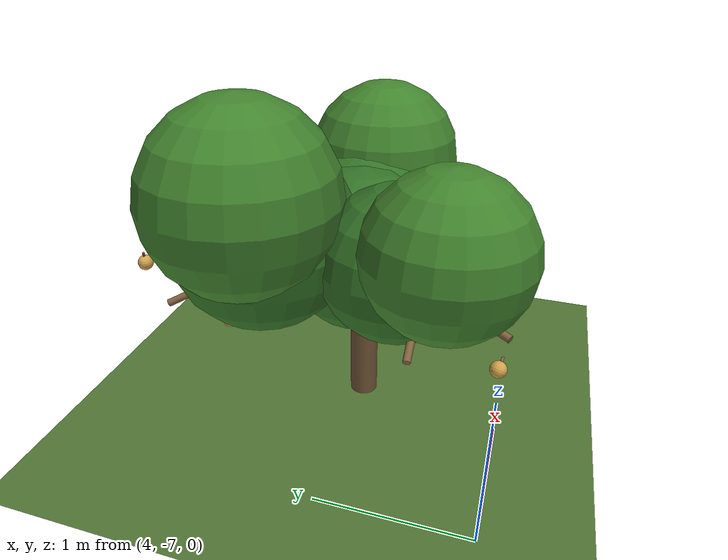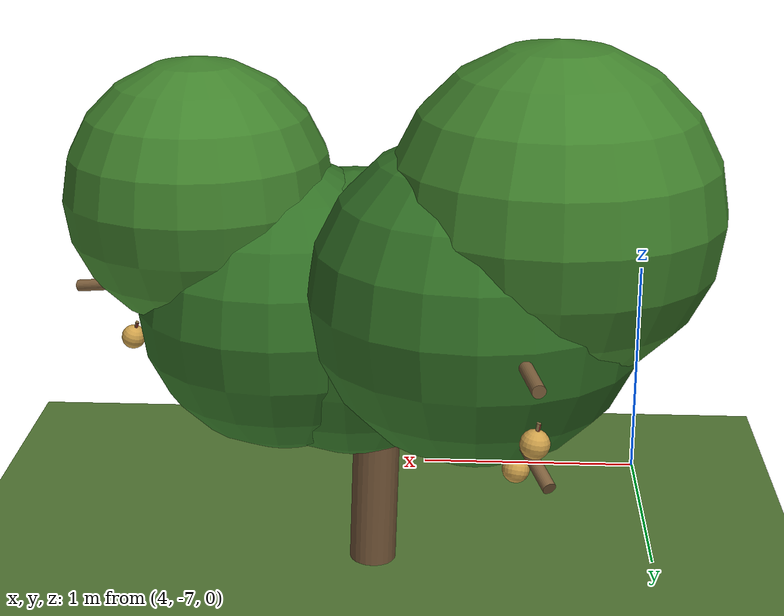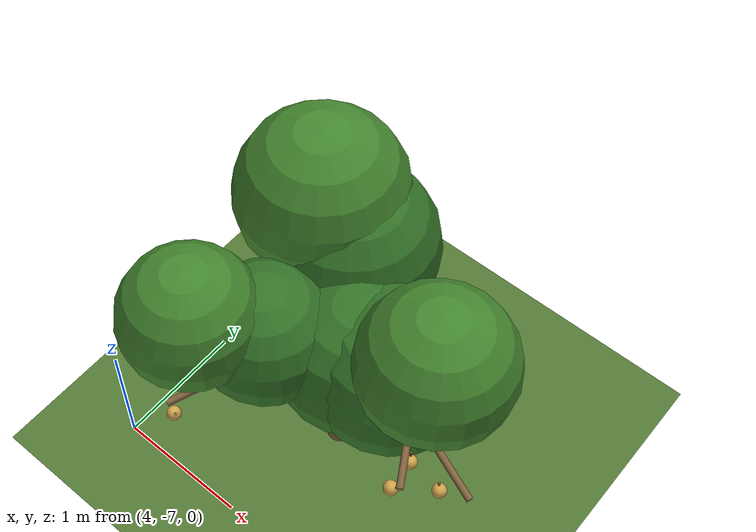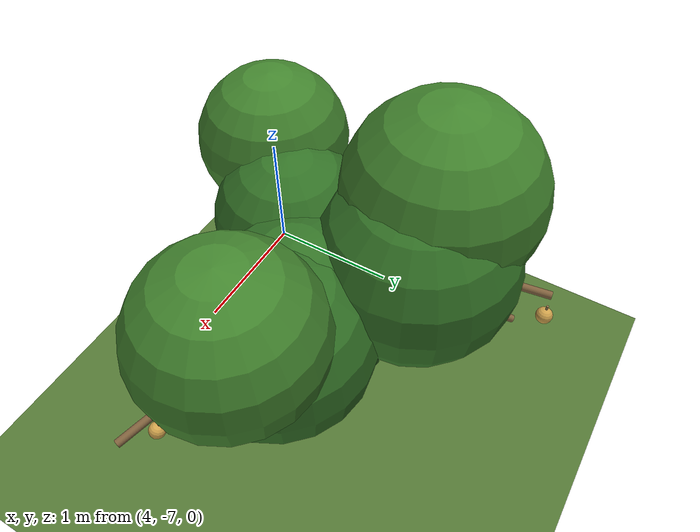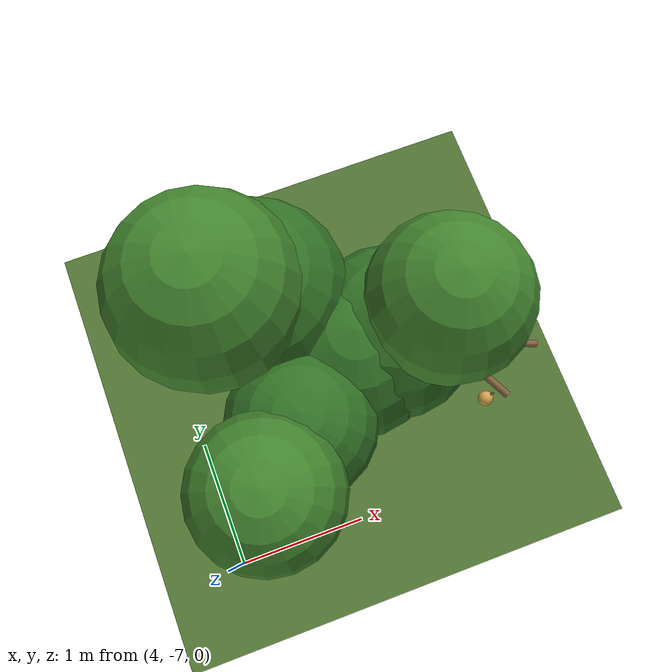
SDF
<sdf version="1.8">
 <world name="bagged_peach_orchard">
  <model name="ground">
   <static>true</static>
   <link name="link">
    <collision name="c">
     <geometry><plane><normal>0 0 1</normal><size>40.0 30.0</size></plane></geometry>
    </collision>
    <visual name="v">
     <geometry><plane><normal>0 0 1</normal><size>40.0 30.0</size></plane></geometry>
     <material>
      <ambient>0.1600 0.2300 0.1000 1</ambient>
      <diffuse>0.3200 0.4600 0.2000 1</diffuse>
      <specular>0.05 0.05 0.05 1</specular>
     </material>
    </visual>
   </link>
  </model>
  <model name="tree_r0_t4">
   <static>true</static>
   <link name="trunk">
    <visual name="trunk_v">
     <pose>5.1897 -5.9958 0.3299 -0.0126 -0.0313 0.0002</pose>
     <geometry><cylinder><radius>0.0979</radius><length>0.6602</length></cylinder></geometry>
     <material>
      <ambient>0.2300 0.1700 0.1100 1</ambient>
      <diffuse>0.4600 0.3400 0.2200 1</diffuse>
      <specular>0.05 0.05 0.05 1</specular>
     </material>
    </visual>
    <collision name="trunk_v_c">
     <pose>5.1897 -5.9958 0.3299 -0.0126 -0.0313 0.0002</pose>
     <geometry><cylinder><radius>0.0979</radius><length>0.6602</length></cylinder></geometry>
    </collision>
   </link>
   <link name="frame">
    <visual name="leader0_v">
     <pose>5.6168 -6.0353 1.0787 0.1037 0.8044 0.0441</pose>
     <geometry><cylinder><radius>0.0500</radius><length>1.2144</length></cylinder></geometry>
     <material>
      <ambient>0.2300 0.1700 0.1100 1</ambient>
      <diffuse>0.4600 0.3400 0.2200 1</diffuse>
      <specular>0.05 0.05 0.05 1</specular>
     </material>
    </visual>
    <collision name="leader0_v_c">
     <pose>5.6168 -6.0353 1.0787 0.1037 0.8044 0.0441</pose>
     <geometry><cylinder><radius>0.0500</radius><length>1.2144</length></cylinder></geometry>
    </collision>
    <visual name="leader1_v">
     <pose>4.8857 -5.5529 1.1305 -0.7504 -0.4281 0.1708</pose>
     <geometry><cylinder><radius>0.0500</radius><length>1.4147</length></cylinder></geometry>
     <material>
      <ambient>0.2300 0.1700 0.1100 1</ambient>
      <diffuse>0.4600 0.3400 0.2200 1</diffuse>
      <specular>0.05 0.05 0.05 1</specular>
     </material>
    </visual>
    <collision name="leader1_v_c">
     <pose>4.8857 -5.5529 1.1305 -0.7504 -0.4281 0.1708</pose>
     <geometry><cylinder><radius>0.0500</radius><length>1.4147</length></cylinder></geometry>
    </collision>
    <visual name="leader2_v">
     <pose>4.8682 -6.3956 1.0957 0.7473 -0.4823 -0.1923</pose>
     <geometry><cylinder><radius>0.0500</radius><length>1.3416</length></cylinder></geometry>
     <material>
      <ambient>0.2300 0.1700 0.1100 1</ambient>
      <diffuse>0.4600 0.3400 0.2200 1</diffuse>
      <specular>0.05 0.05 0.05 1</specular>
     </material>
    </visual>
    <collision name="leader2_v_c">
     <pose>4.8682 -6.3956 1.0957 0.7473 -0.4823 -0.1923</pose>
     <geometry><cylinder><radius>0.0500</radius><length>1.3416</length></cylinder></geometry>
    </collision>
    <visual name="branch0_v">
     <pose>6.1322 -6.1745 1.1694 2.0440 1.1990 1.6819</pose>
     <geometry><cylinder><radius>0.0250</radius><length>0.7618</length></cylinder></geometry>
     <material>
      <ambient>0.2500 0.1900 0.1200 1</ambient>
      <diffuse>0.5000 0.3800 0.2400 1</diffuse>
      <specular>0.05 0.05 0.05 1</specular>
     </material>
    </visual>
    <visual name="branch1_v">
     <pose>5.9835 -6.3112 1.2484 1.7369 0.5132 0.6013</pose>
     <geometry><cylinder><radius>0.0250</radius><length>0.5908</length></cylinder></geometry>
     <material>
      <ambient>0.2500 0.1900 0.1200 1</ambient>
      <diffuse>0.5000 0.3800 0.2400 1</diffuse>
      <specular>0.05 0.05 0.05 1</specular>
     </material>
    </visual>
    <visual name="branch2_v">
     <pose>4.6725 -5.1364 1.0568 -2.0271 -0.4012 0.6308</pose>
     <geometry><cylinder><radius>0.0250</radius><length>0.8056</length></cylinder></geometry>
     <material>
      <ambient>0.2500 0.1900 0.1200 1</ambient>
      <diffuse>0.5000 0.3800 0.2400 1</diffuse>
      <specular>0.05 0.05 0.05 1</specular>
     </material>
    </visual>
    <visual name="branch3_v">
     <pose>4.6465 -4.9623 1.3610 -1.6606 -0.2148 0.2348</pose>
     <geometry><cylinder><radius>0.0250</radius><length>0.7124</length></cylinder></geometry>
     <material>
      <ambient>0.2500 0.1900 0.1200 1</ambient>
      <diffuse>0.5000 0.3800 0.2400 1</diffuse>
      <specular>0.05 0.05 0.05 1</specular>
     </material>
    </visual>
    <visual name="branch4_v">
     <pose>4.6654 -6.7524 1.1228 1.8053 -0.4566 -0.5725</pose>
     <geometry><cylinder><radius>0.0250</radius><length>0.6220</length></cylinder></geometry>
     <material>
      <ambient>0.2500 0.1900 0.1200 1</ambient>
      <diffuse>0.5000 0.3800 0.2400 1</diffuse>
      <specular>0.05 0.05 0.05 1</specular>
     </material>
    </visual>
    <visual name="branch5_v">
     <pose>4.5889 -6.4591 1.0235 3.0866 -1.0577 -3.0475</pose>
     <geometry><cylinder><radius>0.0250</radius><length>0.5419</length></cylinder></geometry>
     <material>
      <ambient>0.2500 0.1900 0.1200 1</ambient>
      <diffuse>0.5000 0.3800 0.2400 1</diffuse>
      <specular>0.05 0.05 0.05 1</specular>
     </material>
    </visual>
    <visual name="twig0_v">
     <pose>4.5565 -6.9954 0.8984 0.2781 0.5794 0.0834</pose>
     <geometry><cylinder><radius>0.0080</radius><length>0.0260</length></cylinder></geometry>
     <material>
      <ambient>0.2750 0.2250 0.1400 1</ambient>
      <diffuse>0.5500 0.4500 0.2800 1</diffuse>
      <specular>0.05 0.05 0.05 1</specular>
     </material>
    </visual>
    <visual name="twig1_v">
     <pose>4.4773 -6.8641 1.3975 0.7170 0.0521 0.0195</pose>
     <geometry><cylinder><radius>0.0080</radius><length>0.0260</length></cylinder></geometry>
     <material>
      <ambient>0.2750 0.2250 0.1400 1</ambient>
      <diffuse>0.5500 0.4500 0.2800 1</diffuse>
      <specular>0.05 0.05 0.05 1</specular>
     </material>
    </visual>
    <visual name="twig2_v">
     <pose>6.0192 -6.0216 1.3260 0.4722 -0.0077 -0.0019</pose>
     <geometry><cylinder><radius>0.0080</radius><length>0.0260</length></cylinder></geometry>
     <material>
      <ambient>0.2750 0.2250 0.1400 1</ambient>
      <diffuse>0.5500 0.4500 0.2800 1</diffuse>
      <specular>0.05 0.05 0.05 1</specular>
     </material>
    </visual>
    <visual name="twig3_v">
     <pose>6.0782 -6.5117 1.0678 -0.1976 0.7285 -0.0756</pose>
     <geometry><cylinder><radius>0.0080</radius><length>0.0260</length></cylinder></geometry>
     <material>
      <ambient>0.2750 0.2250 0.1400 1</ambient>
      <diffuse>0.5500 0.4500 0.2800 1</diffuse>
      <specular>0.05 0.05 0.05 1</specular>
     </material>
    </visual>
    <visual name="twig4_v">
     <pose>4.5928 -5.1023 1.4522 -0.4404 0.4242 -0.0963</pose>
     <geometry><cylinder><radius>0.0080</radius><length>0.0260</length></cylinder></geometry>
     <material>
      <ambient>0.2750 0.2250 0.1400 1</ambient>
      <diffuse>0.5500 0.4500 0.2800 1</diffuse>
      <specular>0.05 0.05 0.05 1</specular>
     </material>
    </visual>
    <visual name="twig5_v">
     <pose>6.2374 -6.2644 0.9447 -0.2106 -0.2829 0.0301</pose>
     <geometry><cylinder><radius>0.0080</radius><length>0.0260</length></cylinder></geometry>
     <material>
      <ambient>0.2750 0.2250 0.1400 1</ambient>
      <diffuse>0.5500 0.4500 0.2800 1</diffuse>
      <specular>0.05 0.05 0.05 1</specular>
     </material>
    </visual>
    <visual name="twig6_v">
     <pose>4.6103 -5.2224 0.8455 0.3025 -0.1443 -0.0220</pose>
     <geometry><cylinder><radius>0.0080</radius><length>0.0260</length></cylinder></geometry>
     <material>
      <ambient>0.2750 0.2250 0.1400 1</ambient>
      <diffuse>0.5500 0.4500 0.2800 1</diffuse>
      <specular>0.05 0.05 0.05 1</specular>
     </material>
    </visual>
    <visual name="twig7_v">
     <pose>4.5690 -4.6170 1.2058 -0.0300 -0.1524 0.0023</pose>
     <geometry><cylinder><radius>0.0080</radius><length>0.0260</length></cylinder></geometry>
     <material>
      <ambient>0.2750 0.2250 0.1400 1</ambient>
      <diffuse>0.5500 0.4500 0.2800 1</diffuse>
      <specular>0.05 0.05 0.05 1</specular>
     </material>
    </visual>
    <visual name="twig8_v">
     <pose>4.6466 -4.8997 1.2403 0.1561 -0.2190 -0.0172</pose>
     <geometry><cylinder><radius>0.0080</radius><length>0.0260</length></cylinder></geometry>
     <material>
      <ambient>0.2750 0.2250 0.1400 1</ambient>
      <diffuse>0.5500 0.4500 0.2800 1</diffuse>
      <specular>0.05 0.05 0.05 1</specular>
     </material>
    </visual>
    <visual name="twig9_v">
     <pose>6.0085 -6.2827 1.0980 -0.3627 -0.1772 0.0326</pose>
     <geometry><cylinder><radius>0.0080</radius><length>0.0260</length></cylinder></geometry>
     <material>
      <ambient>0.2750 0.2250 0.1400 1</ambient>
      <diffuse>0.5500 0.4500 0.2800 1</diffuse>
      <specular>0.05 0.05 0.05 1</specular>
     </material>
    </visual>
   </link>
   <link name="canopy">
    <visual name="blob0_v">
     <pose>5.5485 -5.8967 1.1873 0 0 0</pose>
     <geometry><sphere><radius>0.5956</radius></sphere></geometry>
     <material>
      <ambient>0.1000 0.2250 0.0750 1</ambient>
      <diffuse>0.2000 0.4500 0.1500 1</diffuse>
      <specular>0.05 0.05 0.05 1</specular>
     </material>
    </visual>
    <collision name="blob0_v_c">
     <pose>5.5485 -5.8967 1.1873 0 0 0</pose>
     <geometry><sphere><radius>0.5480</radius></sphere></geometry>
    </collision>
    <visual name="blob1_v">
     <pose>5.8868 -5.9218 1.6357 0 0 0</pose>
     <geometry><sphere><radius>0.5447</radius></sphere></geometry>
     <material>
      <ambient>0.1300 0.2600 0.0900 1</ambient>
      <diffuse>0.2600 0.5200 0.1800 1</diffuse>
      <specular>0.05 0.05 0.05 1</specular>
     </material>
    </visual>
    <collision name="blob1_v_c">
     <pose>5.8868 -5.9218 1.6357 0 0 0</pose>
     <geometry><sphere><radius>0.5011</radius></sphere></geometry>
    </collision>
    <visual name="blob2_v">
     <pose>4.7738 -5.3988 1.3955 0 0 0</pose>
     <geometry><sphere><radius>0.6382</radius></sphere></geometry>
     <material>
      <ambient>0.1000 0.2250 0.0750 1</ambient>
      <diffuse>0.2000 0.4500 0.1500 1</diffuse>
      <specular>0.05 0.05 0.05 1</specular>
     </material>
    </visual>
    <collision name="blob2_v_c">
     <pose>4.7738 -5.3988 1.3955 0 0 0</pose>
     <geometry><sphere><radius>0.5871</radius></sphere></geometry>
    </collision>
    <visual name="blob3_v">
     <pose>4.4978 -5.3886 1.7313 0 0 0</pose>
     <geometry><sphere><radius>0.6272</radius></sphere></geometry>
     <material>
      <ambient>0.1300 0.2600 0.0900 1</ambient>
      <diffuse>0.2600 0.5200 0.1800 1</diffuse>
      <specular>0.05 0.05 0.05 1</specular>
     </material>
    </visual>
    <collision name="blob3_v_c">
     <pose>4.4978 -5.3886 1.7313 0 0 0</pose>
     <geometry><sphere><radius>0.5770</radius></sphere></geometry>
    </collision>
    <visual name="blob4_v">
     <pose>4.7736 -6.2914 1.3143 0 0 0</pose>
     <geometry><sphere><radius>0.5032</radius></sphere></geometry>
     <material>
      <ambient>0.1000 0.2250 0.0750 1</ambient>
      <diffuse>0.2000 0.4500 0.1500 1</diffuse>
      <specular>0.05 0.05 0.05 1</specular>
     </material>
    </visual>
    <collision name="blob4_v_c">
     <pose>4.7736 -6.2914 1.3143 0 0 0</pose>
     <geometry><sphere><radius>0.4630</radius></sphere></geometry>
    </collision>
    <visual name="blob5_v">
     <pose>4.4346 -6.6389 1.5784 0 0 0</pose>
     <geometry><sphere><radius>0.4988</radius></sphere></geometry>
     <material>
      <ambient>0.1300 0.2600 0.0900 1</ambient>
      <diffuse>0.2600 0.5200 0.1800 1</diffuse>
      <specular>0.05 0.05 0.05 1</specular>
     </material>
    </visual>
    <collision name="blob5_v_c">
     <pose>4.4346 -6.6389 1.5784 0 0 0</pose>
     <geometry><sphere><radius>0.4589</radius></sphere></geometry>
    </collision>
    <visual name="blob6_v">
     <pose>5.2724 -5.9327 1.1441 0 0 0</pose>
     <geometry><sphere><radius>0.5872</radius></sphere></geometry>
     <material>
      <ambient>0.1000 0.2250 0.0750 1</ambient>
      <diffuse>0.2000 0.4500 0.1500 1</diffuse>
      <specular>0.05 0.05 0.05 1</specular>
     </material>
    </visual>
    <collision name="blob6_v_c">
     <pose>5.2724 -5.9327 1.1441 0 0 0</pose>
     <geometry><sphere><radius>0.5402</radius></sphere></geometry>
    </collision>
   </link>
   <link name="bag_r0_t4_b00">
    <pose>4.5494 -6.9924 0.8879 0.2781 0.5794 0.0834</pose>
    <visual name="paper">
     <pose>0 0 -0.0520 0 0 0</pose>
     <geometry><sphere><radius>0.0520</radius></sphere></geometry>
     <material>
      <ambient>0.4100 0.3200 0.1500 1</ambient>
      <diffuse>0.8200 0.6400 0.3000 1</diffuse>
      <specular>0.05 0.05 0.05 1</specular>
     </material>
    </visual>
    <visual name="twist">
     <pose>0 0 0.0100 0 0 0</pose>
     <geometry><cylinder><radius>0.0080</radius><length>0.0260</length></cylinder></geometry>
     <material>
      <ambient>0.2750 0.1000 0.0750 1</ambient>
      <diffuse>0.5500 0.2000 0.1500 1</diffuse>
      <specular>0.05 0.05 0.05 1</specular>
     </material>
    </visual>
    <collision name="paper_c">
     <pose>0 0 -0.0520 0 0 0</pose>
     <geometry><sphere><radius>0.0520</radius></sphere></geometry>
    </collision>
   </link>
   <link name="bag_r0_t4_b01">
    <pose>4.4766 -6.8556 1.3877 0.7170 0.0521 0.0195</pose>
    <visual name="paper">
     <pose>0 0 -0.0520 0 0 0</pose>
     <geometry><sphere><radius>0.0520</radius></sphere></geometry>
     <material>
      <ambient>0.4100 0.3200 0.1500 1</ambient>
      <diffuse>0.8200 0.6400 0.3000 1</diffuse>
      <specular>0.05 0.05 0.05 1</specular>
     </material>
    </visual>
    <visual name="twist">
     <pose>0 0 0.0100 0 0 0</pose>
     <geometry><cylinder><radius>0.0080</radius><length>0.0260</length></cylinder></geometry>
     <material>
      <ambient>0.2750 0.1000 0.0750 1</ambient>
      <diffuse>0.5500 0.2000 0.1500 1</diffuse>
      <specular>0.05 0.05 0.05 1</specular>
     </material>
    </visual>
    <collision name="paper_c">
     <pose>0 0 -0.0520 0 0 0</pose>
     <geometry><sphere><radius>0.0520</radius></sphere></geometry>
    </collision>
   </link>
   <link name="bag_r0_t4_b02">
    <pose>6.0193 -6.0157 1.3145 0.4722 -0.0077 -0.0019</pose>
    <visual name="paper">
     <pose>0 0 -0.0520 0 0 0</pose>
     <geometry><sphere><radius>0.0520</radius></sphere></geometry>
     <material>
      <ambient>0.4100 0.3200 0.1500 1</ambient>
      <diffuse>0.8200 0.6400 0.3000 1</diffuse>
      <specular>0.05 0.05 0.05 1</specular>
     </material>
    </visual>
    <visual name="twist">
     <pose>0 0 0.0100 0 0 0</pose>
     <geometry><cylinder><radius>0.0080</radius><length>0.0260</length></cylinder></geometry>
     <material>
      <ambient>0.2750 0.1000 0.0750 1</ambient>
      <diffuse>0.5500 0.2000 0.1500 1</diffuse>
      <specular>0.05 0.05 0.05 1</specular>
     </material>
    </visual>
    <collision name="paper_c">
     <pose>0 0 -0.0520 0 0 0</pose>
     <geometry><sphere><radius>0.0520</radius></sphere></geometry>
    </collision>
   </link>
   <link name="bag_r0_t4_b03">
    <pose>6.0696 -6.5136 1.0583 -0.1976 0.7285 -0.0756</pose>
    <visual name="paper">
     <pose>0 0 -0.0520 0 0 0</pose>
     <geometry><sphere><radius>0.0520</radius></sphere></geometry>
     <material>
      <ambient>0.4100 0.3200 0.1500 1</ambient>
      <diffuse>0.8200 0.6400 0.3000 1</diffuse>
      <specular>0.05 0.05 0.05 1</specular>
     </material>
    </visual>
    <visual name="twist">
     <pose>0 0 0.0100 0 0 0</pose>
     <geometry><cylinder><radius>0.0080</radius><length>0.0260</length></cylinder></geometry>
     <material>
      <ambient>0.2750 0.1000 0.0750 1</ambient>
      <diffuse>0.5500 0.2000 0.1500 1</diffuse>
      <specular>0.05 0.05 0.05 1</specular>
     </material>
    </visual>
    <collision name="paper_c">
     <pose>0 0 -0.0520 0 0 0</pose>
     <geometry><sphere><radius>0.0520</radius></sphere></geometry>
    </collision>
   </link>
   <link name="bag_r0_t4_b04">
    <pose>4.5875 -5.1074 1.4415 -0.4404 0.4242 -0.0963</pose>
    <visual name="paper">
     <pose>0 0 -0.0520 0 0 0</pose>
     <geometry><sphere><radius>0.0520</radius></sphere></geometry>
     <material>
      <ambient>0.4100 0.3200 0.1500 1</ambient>
      <diffuse>0.8200 0.6400 0.3000 1</diffuse>
      <specular>0.05 0.05 0.05 1</specular>
     </material>
    </visual>
    <visual name="twist">
     <pose>0 0 0.0100 0 0 0</pose>
     <geometry><cylinder><radius>0.0080</radius><length>0.0260</length></cylinder></geometry>
     <material>
      <ambient>0.2750 0.1000 0.0750 1</ambient>
      <diffuse>0.5500 0.2000 0.1500 1</diffuse>
      <specular>0.05 0.05 0.05 1</specular>
     </material>
    </visual>
    <collision name="paper_c">
     <pose>0 0 -0.0520 0 0 0</pose>
     <geometry><sphere><radius>0.0520</radius></sphere></geometry>
    </collision>
   </link>
   <link name="bag_r0_t4_b05">
    <pose>6.2410 -6.2670 0.9325 -0.2106 -0.2829 0.0301</pose>
    <visual name="paper">
     <pose>0 0 -0.0520 0 0 0</pose>
     <geometry><sphere><radius>0.0520</radius></sphere></geometry>
     <material>
      <ambient>0.4100 0.3200 0.1500 1</ambient>
      <diffuse>0.8200 0.6400 0.3000 1</diffuse>
      <specular>0.05 0.05 0.05 1</specular>
     </material>
    </visual>
    <visual name="twist">
     <pose>0 0 0.0100 0 0 0</pose>
     <geometry><cylinder><radius>0.0080</radius><length>0.0260</length></cylinder></geometry>
     <material>
      <ambient>0.2750 0.1000 0.0750 1</ambient>
      <diffuse>0.5500 0.2000 0.1500 1</diffuse>
      <specular>0.05 0.05 0.05 1</specular>
     </material>
    </visual>
    <collision name="paper_c">
     <pose>0 0 -0.0520 0 0 0</pose>
     <geometry><sphere><radius>0.0520</radius></sphere></geometry>
    </collision>
   </link>
   <link name="bag_r0_t4_b06">
    <pose>4.6122 -5.2186 0.8332 0.3025 -0.1443 -0.0220</pose>
    <visual name="paper">
     <pose>0 0 -0.0520 0 0 0</pose>
     <geometry><sphere><radius>0.0520</radius></sphere></geometry>
     <material>
      <ambient>0.4100 0.3200 0.1500 1</ambient>
      <diffuse>0.8200 0.6400 0.3000 1</diffuse>
      <specular>0.05 0.05 0.05 1</specular>
     </material>
    </visual>
    <visual name="twist">
     <pose>0 0 0.0100 0 0 0</pose>
     <geometry><cylinder><radius>0.0080</radius><length>0.0260</length></cylinder></geometry>
     <material>
      <ambient>0.2750 0.1000 0.0750 1</ambient>
      <diffuse>0.5500 0.2000 0.1500 1</diffuse>
      <specular>0.05 0.05 0.05 1</specular>
     </material>
    </visual>
    <collision name="paper_c">
     <pose>0 0 -0.0520 0 0 0</pose>
     <geometry><sphere><radius>0.0520</radius></sphere></geometry>
    </collision>
   </link>
   <link name="bag_r0_t4_b07">
    <pose>4.5709 -4.6174 1.1930 -0.0300 -0.1524 0.0023</pose>
    <visual name="paper">
     <pose>0 0 -0.0520 0 0 0</pose>
     <geometry><sphere><radius>0.0520</radius></sphere></geometry>
     <material>
      <ambient>0.4100 0.3200 0.1500 1</ambient>
      <diffuse>0.8200 0.6400 0.3000 1</diffuse>
      <specular>0.05 0.05 0.05 1</specular>
     </material>
    </visual>
    <visual name="twist">
     <pose>0 0 0.0100 0 0 0</pose>
     <geometry><cylinder><radius>0.0080</radius><length>0.0260</length></cylinder></geometry>
     <material>
      <ambient>0.2750 0.1000 0.0750 1</ambient>
      <diffuse>0.5500 0.2000 0.1500 1</diffuse>
      <specular>0.05 0.05 0.05 1</specular>
     </material>
    </visual>
    <collision name="paper_c">
     <pose>0 0 -0.0520 0 0 0</pose>
     <geometry><sphere><radius>0.0520</radius></sphere></geometry>
    </collision>
   </link>
   <link name="bag_r0_t4_b08">
    <pose>4.6495 -4.8977 1.2278 0.1561 -0.2190 -0.0172</pose>
    <visual name="paper">
     <pose>0 0 -0.0520 0 0 0</pose>
     <geometry><sphere><radius>0.0520</radius></sphere></geometry>
     <material>
      <ambient>0.4100 0.3200 0.1500 1</ambient>
      <diffuse>0.8200 0.6400 0.3000 1</diffuse>
      <specular>0.05 0.05 0.05 1</specular>
     </material>
    </visual>
    <visual name="twist">
     <pose>0 0 0.0100 0 0 0</pose>
     <geometry><cylinder><radius>0.0080</radius><length>0.0260</length></cylinder></geometry>
     <material>
      <ambient>0.2750 0.1000 0.0750 1</ambient>
      <diffuse>0.5500 0.2000 0.1500 1</diffuse>
      <specular>0.05 0.05 0.05 1</specular>
     </material>
    </visual>
    <collision name="paper_c">
     <pose>0 0 -0.0520 0 0 0</pose>
     <geometry><sphere><radius>0.0520</radius></sphere></geometry>
    </collision>
   </link>
   <link name="bag_r0_t4_b09">
    <pose>6.0108 -6.2873 1.0861 -0.3627 -0.1772 0.0326</pose>
    <visual name="paper">
     <pose>0 0 -0.0520 0 0 0</pose>
     <geometry><sphere><radius>0.0520</radius></sphere></geometry>
     <material>
      <ambient>0.4100 0.3200 0.1500 1</ambient>
      <diffuse>0.8200 0.6400 0.3000 1</diffuse>
      <specular>0.05 0.05 0.05 1</specular>
     </material>
    </visual>
    <visual name="twist">
     <pose>0 0 0.0100 0 0 0</pose>
     <geometry><cylinder><radius>0.0080</radius><length>0.0260</length></cylinder></geometry>
     <material>
      <ambient>0.2750 0.1000 0.0750 1</ambient>
      <diffuse>0.5500 0.2000 0.1500 1</diffuse>
      <specular>0.05 0.05 0.05 1</specular>
     </material>
    </visual>
    <collision name="paper_c">
     <pose>0 0 -0.0520 0 0 0</pose>
     <geometry><sphere><radius>0.0520</radius></sphere></geometry>
    </collision>
   </link>
  </model>
 </world>
</sdf>
